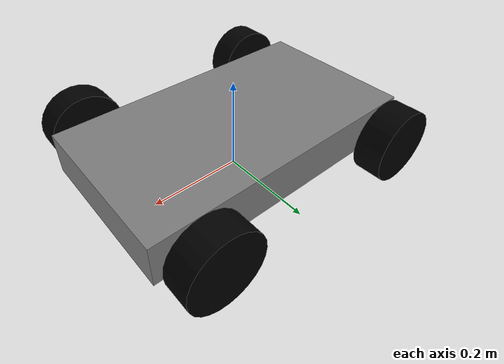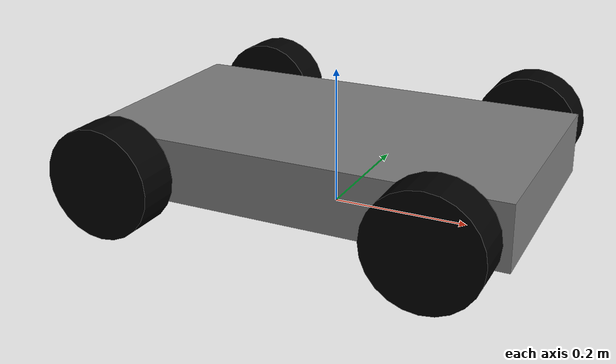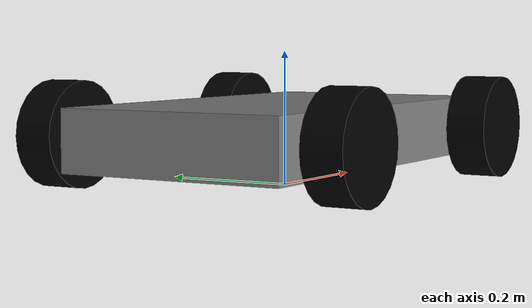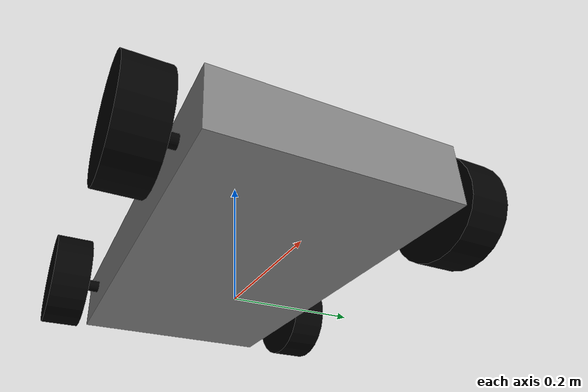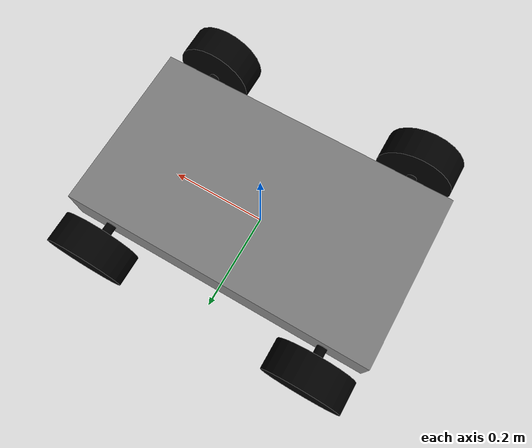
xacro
<?xml version="1.0"?>
<robot xmlns:xacro="http://www.ros.org/wiki/xacro" name="robot">

    <xacro:include filename="inertial_macros.xacro"/>

    <material name="white">
        <color rgba="1 1 1 1"/>
    </material>

    <material name="black">
        <color rgba="0 0 0 1"/>
    </material>

    <material name="grey">
        <color rgba="0.5 0.5 0.5 1"/>
    </material>

    <material name="red">
        <color rgba="1 0 0 1"/>
    </material>

    <!-- BASE LINK -->
    <link name="base_link">

    </link>

    <!-- sase gövde-->
    <joint name="sase_joint" type="fixed">
        <origin xyz="0 0 0.04"/>
        <parent link="base_link"/>
        <child link="sase"/>
    </joint>

    <link name="sase">
        <visual>
            <geometry>
                <box size="0.615 0.345 0.09"/> <!-- 61.5 cm uzunluk, 34.5 cm genişlik, 9 cm yükseklik -->
            </geometry>
            <material name="grey"/>
            <origin xyz="0 0 0.04"/>
        </visual>

        <collision>
            <geometry>
                <box size="0.615 0.345 0.09"/> <!-- 61.5 cm uzunluk, 34.5 cm genişlik, 9 cm yükseklik -->
            </geometry>
            <origin xyz="0 0 0.04"/>
        </collision>
        <xacro:inertial_box mass="5" x="0.615" y="0.345" z="0.09">
            <origin xyz="0 0 0.04" rpy = "0 0 0"/>
        </xacro:inertial_box>
    </link>

    <gazebo reference="sase">
        <material>Gazebo/Grey</material>
    </gazebo>

    <!-- Ön tekerlerin çubuğa bağlanması -->
    <joint name="on_teker_joints" type="fixed">
        <origin xyz="0.112 0 0.02"/>
        <parent link="sase"/>
        <child link="on_teker_cubugu"/>
    </joint>

    <link name="on_teker_cubugu">
        <visual>
            <geometry>
                <cylinder radius="0.01" length="0.49"/> <!-- Örnek değerler -->
            </geometry>
            <material name="black"/>
            <origin xyz="0.112 0 0.02" rpy="${pi/2} 0 0"/>
        </visual>
        <collision>
            <geometry>
                <cylinder radius="0.01" length="0.49"/> <!-- Örnek değerler -->
            </geometry>
            <origin xyz="0.112 0 0.02"  rpy="${pi/2} 0 0"/>
        </collision>
    </link>

    <gazebo reference="on_teker_cubugu">
        <material>Gazebo/Blue</material>
    </gazebo>

    <!-- arka tekerlerin çubuğa bağlanması -->
    <joint name="arka_teker_joints" type="fixed">
        <origin xyz="-0.112 0 0.02" />
        <parent link="sase"/>
        <child link="arka_teker_cubugu"/>
    </joint>

    <link name="arka_teker_cubugu">
        <visual>
            <geometry>
                <cylinder radius="0.01" length="0.49"/> <!-- Örnek değerler -->
            </geometry>
            <material name="black"/>
            <origin xyz="-0.112 0 0.02"  rpy="${pi/2} 0 0"/>
        </visual>
        <collision>
            <geometry>
                <cylinder radius="0.01" length="0.49"/> <!-- Örnek değerler -->
            </geometry>
            <origin xyz="-0.112 0 0.02"  rpy="${pi/2} 0 0"/>
        </collision>
    </link>

    <gazebo reference="arka_teker_cubugu">
        <material>Gazebo/Blue</material>
    </gazebo>

    <!--sag on teker-->
    <joint name="sag_on_teker_joint" type="continuous">
        <origin xyz="0.225 -0.228 0.0825" rpy="${pi/2} 0 0"/>
        <parent link="base_link"/>
        <child link="sag_on_teker"/>
        <axis xyz="0 0 -1"/>
    </joint>

    <link name="sag_on_teker">
        <visual>
            <geometry>
                <cylinder radius="0.0775" length="0.06"/> <!-- 15.5 cm çap, 6 cm yükseklik -->
            </geometry>
            <material name="black"/>

        </visual>

        <collision>
            <geometry>
                <cylinder radius="0.0775" length="0.06"/> <!-- 15.5 cm çap, 6 cm yükseklik -->
            </geometry>

        </collision>
        <xacro:inertial_cylinder mass="1" length="0.06" radius="0.0775"> <!-- 15.5 cm çap, 6 cm yükseklik -->
            <origin xyz="0.225 0.228 0.0825" rpy="${pi/2} 0 0"/>

        </xacro:inertial_cylinder>
    </link>

    <gazebo reference="sag_on_teker">
        <material>Gazebo/Black</material>
    </gazebo>

    <!--sag arka teker-->
    <joint name="sag_arka_teker_joint" type="continuous">
        <origin xyz="-0.225 -0.228 0.0825" rpy="${pi/2} 0 0"/>
        <parent link="base_link"/>
        <child link="sag_arka_teker"/>
        <axis xyz="0 0 -1"/>
    </joint>

    <link name="sag_arka_teker">
        <visual>
            <geometry>
                <cylinder radius="0.0775" length="0.06"/> <!-- 15.5 cm çap, 6 cm yükseklik -->
            </geometry>
            <material name="black"/>

        </visual>

        <collision>
            <geometry>
                <cylinder radius="0.0775" length="0.06"/> <!-- 15.5 cm çap, 6 cm yükseklik -->
            </geometry>

        </collision>
        <xacro:inertial_cylinder mass="1" length="0.06" radius="0.0775"> <!-- 15.5 cm çap, 6 cm yükseklik -->
        <origin xyz="-0.225 0.228 0.0825" rpy="-${pi/2} 0 0"/>
        </xacro:inertial_cylinder>
    </link>

    <gazebo reference="sag_arka_teker">
        <material>Gazebo/Black</material>
    </gazebo>

    <!--sol on teker-->
    <joint name="sol_on_teker_joint" type="continuous">
        <origin xyz="0.225 0.228 0.0825" rpy = "-${pi/2} 0 0"/>
        <parent link="base_link"/>
        <child link="sol_on_teker"/>
        <axis xyz="0 0 1"/>
    </joint>

    <link name="sol_on_teker">
        <visual>
            <geometry>
                <cylinder radius="0.0775" length="0.06"/> <!-- 15.5 cm çap, 6 cm yükseklik -->
            </geometry>
            <material name="black"/>

        </visual>

        <collision>
            <geometry>
                <cylinder radius="0.0775" length="0.06"/> <!-- 15.5 cm çap, 6 cm yükseklik -->
            </geometry>

        </collision>
        <xacro:inertial_cylinder mass="1" length="0.06" radius="0.0775"> <!-- 15.5 cm çap, 6 cm yükseklik -->
            <origin xyz="0.225 -0.228 0.0825" rpy = "${pi/2} 0 0"/>
        </xacro:inertial_cylinder>
    </link>

    <gazebo reference="sol_on_teker">
        <material>Gazebo/Black</material>
    </gazebo>

    <!--sol arka teker-->
    <joint name="sol_arka_teker_joint" type="continuous">
        <origin xyz="-0.225 0.228 0.0825" rpy="-${pi/2} 0 0"/>
        <parent link="base_link"/>
        <child link="sol_arka_teker"/>
        <axis xyz="0 0 1"/>
    </joint>

    <link name="sol_arka_teker">
        <visual>
            <geometry>
                <cylinder radius="0.0775" length="0.06"/> <!-- 15.5 cm çap, 6 cm yükseklik -->
            </geometry>
            <material name="black"/>

        </visual>

        <collision>
            <geometry>
                <cylinder radius="0.0775" length="0.06"/> <!-- 15.5 cm çap, 6 cm yükseklik -->
            </geometry>

        </collision>
        <xacro:inertial_cylinder mass="1" length="0.06" radius="0.0775"> <!-- 15.5 cm çap, 6 cm yükseklik -->
            <origin xyz="-0.225 -0.228 0.0825" rpy="-${pi/2} 0 0"/>
        </xacro:inertial_cylinder>
    </link>

    <gazebo reference="sol_arka_teker">
        <material>Gazebo/Black</material>
    </gazebo>

</robot>

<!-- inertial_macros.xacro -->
<robot xmlns:xacro="http://www.ros.org/wiki/xacro" >

    <!-- Specify some standard inertial calculations https://en.wikipedia.org/wiki/List_of_moments_of_inertia -->
    <!-- These make use of xacro's mathematical functionality -->

    <xacro:macro name="inertial_box" params="mass x y z *origin">
        <inertial>
            <xacro:insert_block name="origin"/>
            <mass value="${mass}" />
            <inertia ixx="${(1/12) * mass * (y*y+z*z)}" ixy="0.0" ixz="0.0"
                    iyy="${(1/12) * mass * (x*x+z*z)}" iyz="0.0"
                    izz="${(1/12) * mass * (x*x+y*y)}" />
        </inertial>
    </xacro:macro>

    <xacro:macro name="inertial_cylinder" params="mass length radius *origin">
        <inertial>
            <xacro:insert_block name="origin"/>
            <mass value="${mass}" />
            <inertia ixx="${(1/12) * mass * (3*radius*radius + length*length)}" ixy="0.0" ixz="0.0"
                    iyy="${(1/12) * mass * (3*radius*radius + length*length)}" iyz="0.0"
                    izz="${(1/2) * mass * (radius*radius)}" />
        </inertial>
    </xacro:macro>

</robot>
